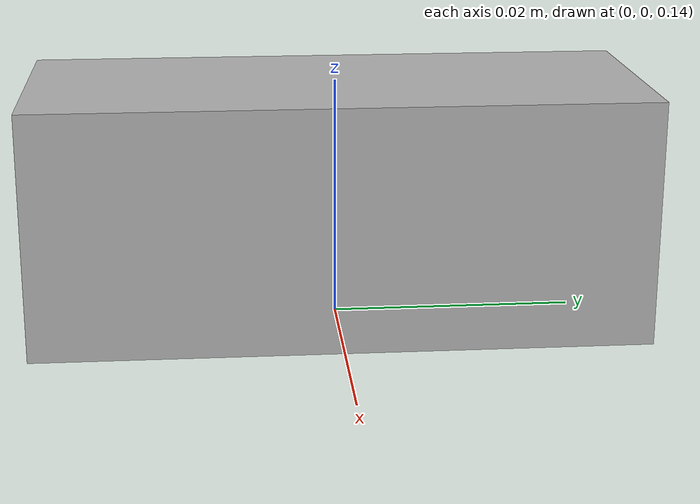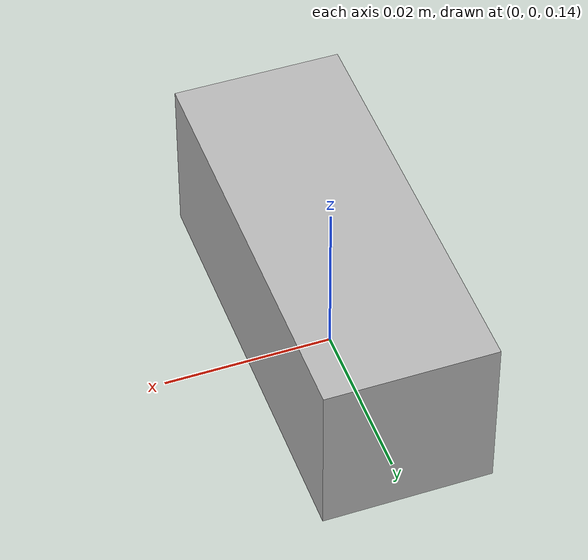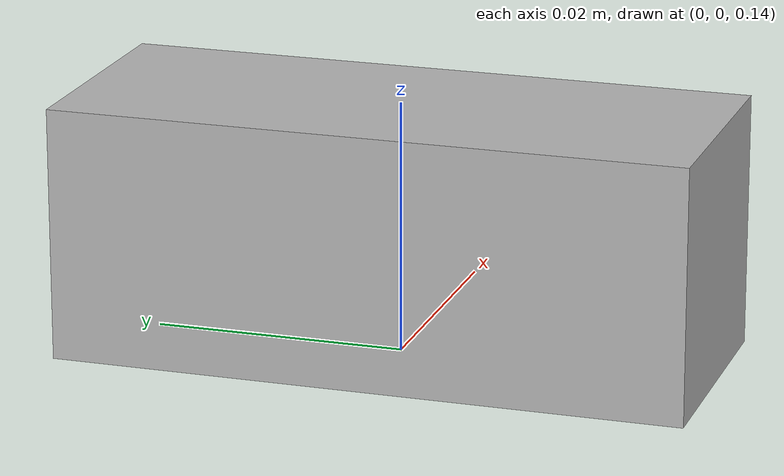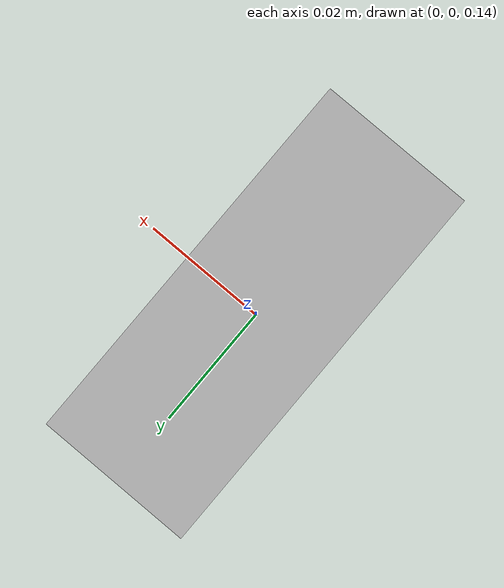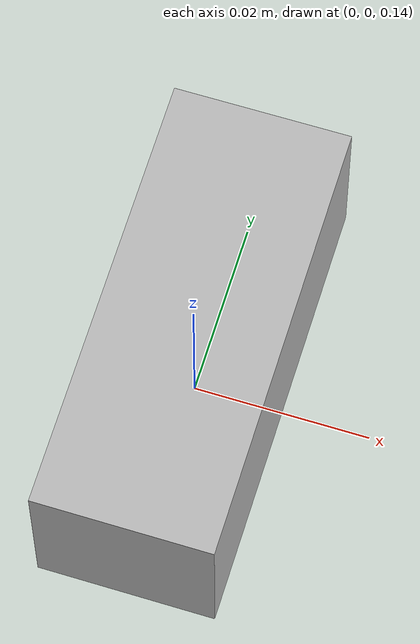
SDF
<?xml version="1.0" ?>
<sdf version="1.5">
	<model name='alex_depth_camera'>
		<!-- 调整相机位置和姿态 -->
		<pose>0 0 0.15 0 0 0</pose>      <!-- 高度0.5，朝向正前方看-->
      	<static>false</static>
		<link name="link">
			<inertial>
				<mass>0.01</mass>
				<inertia>
					<ixx>1e-04</ixx>
					<ixy>0</ixy>
					<ixz>0</ixz>
					<iyy>1e-04</iyy>
					<iyz>0</iyz>
					<izz>1e-04</izz>
				</inertia>
			</inertial>
			<visual name="visual">
				<pose>0 0 0 0 0 0</pose>
				<geometry>
					<box>
						<size>0.02 0.05 0.02</size>
					</box>
				</geometry>
			</visual>
			<collision name='collision'>
				<geometry>
					<box>
					<size>0.02 0.05 0.02</size>
					</box>
				</geometry>
			</collision>
			<sensor type="depth" name="camera1">
				<update_rate>30</update_rate>
				<visualize>true</visualize>
				<camera>
					<horizontal_fov>1.92</horizontal_fov>
					<image>
						<width>640</width>
						<height>480</height>
						<format>B8G8R8</format>
					</image>
					<depth_camera>
					</depth_camera>
					<clip>
						<near>0.02</near>
						<far>300</far>
					</clip>
					<noise>
						<type>gaussian</type>
						<!-- Noise is sampled independently per pixel on each frame.
							That pixel's noise value is added to each of its color
							channels, which at that point lie in the range [0,1]. -->
						<mean>0.0</mean>
						<stddev>0.007</stddev>
					</noise>
				</camera>
				<plugin name="camera_controller" filename="libgazebo_ros_camera.so">
					<ros>
						<namespace>alex_demo_cam</namespace>

						<!-- topics need to be prefixed with camera_name for remapping -->
						<remapping>mycamera/image_raw:=mycamera/image_demo</remapping>
						<remapping>mycamera/depth/image_raw:=mycamera/depth_demo</remapping>
						<remapping>mycamera/camera_info:=mycamera/raw_cam_info_demo</remapping>
						<remapping>mycamera/depth/camera_info:=mycamera/depth_cam_info_demo</remapping>
						<remapping>mycamera/points:=mycamera/points_demo</remapping>
					</ros>

					<!-- omit camera_name to default to sensor name -->
					<camera_name>mycamera</camera_name>

					<min_depth>0.1</min_depth>
					<max_depth>500</max_depth>
				</plugin>
			</sensor>
		</link>
	</model>

</sdf>
